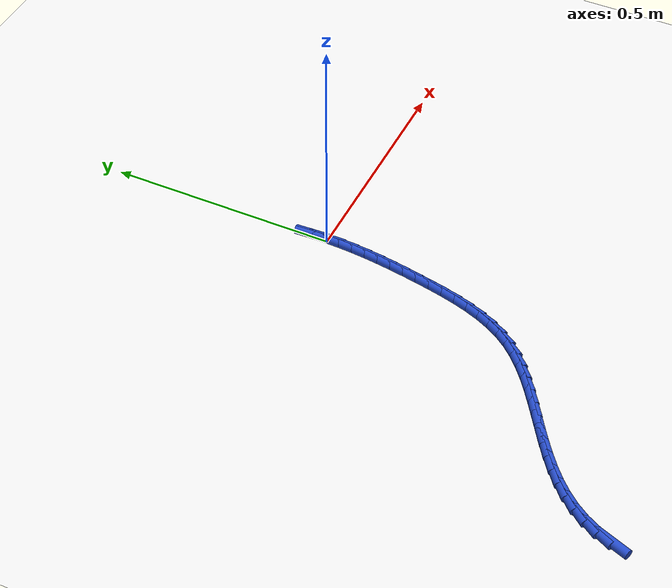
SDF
<sdf version="1.6">
 <world name="default">
  <model name="ground_plane">
   <static>1</static>
   <link name="link">
    <collision name="collision">
     <geometry><plane><normal>0 0 1</normal><size>100 100</size></plane></geometry>
     <surface><friction><ode><mu>100</mu><mu2>50</mu2></ode></friction></surface>
    </collision>
    <visual name="visual">
     <cast_shadows>0</cast_shadows>
     <geometry><plane><normal>0 0 1</normal><size>100 100</size></plane></geometry>
     <material>
      <script><uri>file://media/materials/scripts/gazebo.material</uri><name>Gazebo/WhiteGlow</name></script>
     </material>
    </visual>
   </link>
  </model>
  <model name="line">
   <link name="link_0">
    <pose>-7.806255641895632e-18 4.85722573273506e-17 0.01 0 1.57 -1.5604413219199995</pose>
    <collision name="collision">
     <geometry><cylinder><radius>0.01</radius><length>0.08</length></cylinder></geometry>
    </collision>
    <visual name="visual">
     <material>
      <script><name>Gazebo/Blue</name><uri>file://media/materials/scripts/gazebo.material</uri></script>
     </material>
     <geometry><cylinder><radius>0.01</radius><length>0.08</length></cylinder></geometry>
    </visual>
   </link>
   <link name="link_1">
    <pose>-0.0003257807725844156 0.031460065192326254 0.01 0 1.57 -1.525371229036069</pose>
    <collision name="collision">
     <geometry><cylinder><radius>0.01</radius><length>0.08</length></cylinder></geometry>
    </collision>
    <visual name="visual">
     <material>
      <script><name>Gazebo/Blue</name><uri>file://media/materials/scripts/gazebo.material</uri></script>
     </material>
     <geometry><cylinder><radius>0.01</radius><length>0.08</length></cylinder></geometry>
    </visual>
   </link>
   <link name="link_249">
    <pose>-0.4780613458508661 -0.7970602618831388 0.01 0 1.57 1.2229165995973417</pose>
    <collision name="collision">
     <geometry><cylinder><radius>0.01</radius><length>0.08</length></cylinder></geometry>
    </collision>
    <visual name="visual">
     <material>
      <script><name>Gazebo/Blue</name><uri>file://media/materials/scripts/gazebo.material</uri></script>
     </material>
     <geometry><cylinder><radius>0.01</radius><length>0.08</length></cylinder></geometry>
    </visual>
   </link>
   <link name="link_250">
    <pose>-0.46670847445941227 -0.7657530126044441 0.01 0 1.57 1.0959779014998752</pose>
    <collision name="collision">
     <geometry><cylinder><radius>0.01</radius><length>0.08</length></cylinder></geometry>
    </collision>
    <visual name="visual">
     <material>
      <script><name>Gazebo/Blue</name><uri>file://media/materials/scripts/gazebo.material</uri></script>
     </material>
     <geometry><cylinder><radius>0.01</radius><length>0.08</length></cylinder></geometry>
    </visual>
   </link>
   <link name="link_251">
    <pose>-0.45201307563647836 -0.737165108408421 0.01 0 1.57 0.977134531908725</pose>
    <collision name="collision">
     <geometry><cylinder><radius>0.01</radius><length>0.08</length></cylinder></geometry>
    </collision>
    <visual name="visual">
     <material>
      <script><name>Gazebo/Blue</name><uri>file://media/materials/scripts/gazebo.material</uri></script>
     </material>
     <geometry><cylinder><radius>0.01</radius><length>0.08</length></cylinder></geometry>
    </visual>
   </link>
   <link name="link_252">
    <pose>-0.43435505137940156 -0.711000114657719 0.01 0 1.57 0.8714189642038949</pose>
    <collision name="collision">
     <geometry><cylinder><radius>0.01</radius><length>0.08</length></cylinder></geometry>
    </collision>
    <visual name="visual">
     <material>
      <script><name>Gazebo/Blue</name><uri>file://media/materials/scripts/gazebo.material</uri></script>
     </material>
     <geometry><cylinder><radius>0.01</radius><length>0.08</length></cylinder></geometry>
    </visual>
   </link>
   <link name="link_253">
    <pose>-0.41412450363365 -0.6869511883117023 0.01 0 1.57 0.781517848235146</pose>
    <collision name="collision">
     <geometry><cylinder><radius>0.01</radius><length>0.08</length></cylinder></geometry>
    </collision>
    <visual name="visual">
     <material>
      <script><name>Gazebo/Blue</name><uri>file://media/materials/scripts/gazebo.material</uri></script>
     </material>
     <geometry><cylinder><radius>0.01</radius><length>0.08</length></cylinder></geometry>
    </visual>
   </link>
   <link name="link_254">
    <pose>-0.39171153434468997 -0.6647114863297328 0.01 0 1.57 0.7083864011619792</pose>
    <collision name="collision">
     <geometry><cylinder><radius>0.01</radius><length>0.08</length></cylinder></geometry>
    </collision>
    <visual name="visual">
     <material>
      <script><name>Gazebo/Blue</name><uri>file://media/materials/scripts/gazebo.material</uri></script>
     </material>
     <geometry><cylinder><radius>0.01</radius><length>0.08</length></cylinder></geometry>
    </visual>
   </link>
   <link name="link_255">
    <pose>-0.36750624545798843 -0.6439741656711723 0.01 0 1.57 0.6518496576164503</pose>
    <collision name="collision">
     <geometry><cylinder><radius>0.01</radius><length>0.08</length></cylinder></geometry>
    </collision>
    <visual name="visual">
     <material>
      <script><name>Gazebo/Blue</name><uri>file://media/materials/scripts/gazebo.material</uri></script>
     </material>
     <geometry><cylinder><radius>0.01</radius><length>0.08</length></cylinder></geometry>
    </visual>
   </link>
   <link name="link_256">
    <pose>-0.3418987389190121 -0.6244323832953833 0.01 0 1.57 0.6112136944542926</pose>
    <collision name="collision">
     <geometry><cylinder><radius>0.01</radius><length>0.08</length></cylinder></geometry>
    </collision>
    <visual name="visual">
     <material>
      <script><name>Gazebo/Blue</name><uri>file://media/materials/scripts/gazebo.material</uri></script>
     </material>
     <geometry><cylinder><radius>0.01</radius><length>0.08</length></cylinder></geometry>
    </visual>
   </link>
   <link name="link_257">
    <pose>-0.315279116673228 -0.6057792961617283 0.01 0 1.57 0.5857155691482555</pose>
    <collision name="collision">
     <geometry><cylinder><radius>0.01</radius><length>0.08</length></cylinder></geometry>
    </collision>
    <visual name="visual">
     <material>
      <script><name>Gazebo/Blue</name><uri>file://media/materials/scripts/gazebo.material</uri></script>
     </material>
     <geometry><cylinder><radius>0.01</radius><length>0.08</length></cylinder></geometry>
    </visual>
   </link>
   <link name="link_258">
    <pose>-0.288037480666103 -0.5877080612295698 0.01 0 1.57 0.5747979015315682</pose>
    <collision name="collision">
     <geometry><cylinder><radius>0.01</radius><length>0.08</length></cylinder></geometry>
    </collision>
    <visual name="visual">
     <material>
      <script><name>Gazebo/Blue</name><uri>file://media/materials/scripts/gazebo.material</uri></script>
     </material>
     <geometry><cylinder><radius>0.01</radius><length>0.08</length></cylinder></geometry>
    </visual>
   </link>
   <link name="link_259">
    <pose>-0.26056393284310403 -0.5699118354582701 0.01 0 1.57 0.578253634698167</pose>
    <collision name="collision">
     <geometry><cylinder><radius>0.01</radius><length>0.08</length></cylinder></geometry>
    </collision>
    <visual name="visual">
     <material>
      <script><name>Gazebo/Blue</name><uri>file://media/materials/scripts/gazebo.material</uri></script>
     </material>
     <geometry><cylinder><radius>0.01</radius><length>0.08</length></cylinder></geometry>
    </visual>
   </link>
   <link name="link_260">
    <pose>-0.2332485751496979 -0.5520837758071914 0.01 0 1.57 0.5962853584558275</pose>
    <collision name="collision">
     <geometry><cylinder><radius>0.01</radius><length>0.08</length></cylinder></geometry>
    </collision>
    <visual name="visual">
     <material>
      <script><name>Gazebo/Blue</name><uri>file://media/materials/scripts/gazebo.material</uri></script>
     </material>
     <geometry><cylinder><radius>0.01</radius><length>0.08</length></cylinder></geometry>
    </visual>
   </link>
   <link name="link_261">
    <pose>-0.20648150953135075 -0.5339170392356958 0.01 0 1.57 0.629499092627103</pose>
    <collision name="collision">
     <geometry><cylinder><radius>0.01</radius><length>0.08</length></cylinder></geometry>
    </collision>
    <visual name="visual">
     <material>
      <script><name>Gazebo/Blue</name><uri>file://media/materials/scripts/gazebo.material</uri></script>
     </material>
     <geometry><cylinder><radius>0.01</radius><length>0.08</length></cylinder></geometry>
    </visual>
   </link>
   <link name="link_262">
    <pose>-0.18065283793353107 -0.5151047827031466 0.01 0 1.57 0.6788210831576493</pose>
    <collision name="collision">
     <geometry><cylinder><radius>0.01</radius><length>0.08</length></cylinder></geometry>
    </collision>
    <visual name="visual">
     <material>
      <script><name>Gazebo/Blue</name><uri>file://media/materials/scripts/gazebo.material</uri></script>
     </material>
     <geometry><cylinder><radius>0.01</radius><length>0.08</length></cylinder></geometry>
    </visual>
   </link>
   <link name="link_263">
    <pose>-0.15615266230170502 -0.4953401631689057 0.01 0 1.57 0.7452933014165479</pose>
    <collision name="collision">
     <geometry><cylinder><radius>0.01</radius><length>0.08</length></cylinder></geometry>
    </collision>
    <visual name="visual">
     <material>
      <script><name>Gazebo/Blue</name><uri>file://media/materials/scripts/gazebo.material</uri></script>
     </material>
     <geometry><cylinder><radius>0.01</radius><length>0.08</length></cylinder></geometry>
    </visual>
   </link>
   <link name="link_264">
    <pose>-0.13337108458133942 -0.47431633759233555 0.01 0 1.57 0.8296797574565116</pose>
    <collision name="collision">
     <geometry><cylinder><radius>0.01</radius><length>0.08</length></cylinder></geometry>
    </collision>
    <visual name="visual">
     <material>
      <script><name>Gazebo/Blue</name><uri>file://media/materials/scripts/gazebo.material</uri></script>
     </material>
     <geometry><cylinder><radius>0.01</radius><length>0.08</length></cylinder></geometry>
    </visual>
   </link>
   <link name="link_265">
    <pose>-0.11269820671790112 -0.45172646293279844 0.01 0 1.57 0.9317422423619229</pose>
    <collision name="collision">
     <geometry><cylinder><radius>0.01</radius><length>0.08</length></cylinder></geometry>
    </collision>
    <visual name="visual">
     <material>
      <script><name>Gazebo/Blue</name><uri>file://media/materials/scripts/gazebo.material</uri></script>
     </material>
     <geometry><cylinder><radius>0.01</radius><length>0.08</length></cylinder></geometry>
    </visual>
   </link>
   <link name="link_266">
    <pose>-0.09452197033573323 -0.42726561210231595 0.01 0 1.57 1.0397601086058614</pose>
    <collision name="collision">
     <geometry><cylinder><radius>0.01</radius><length>0.08</length></cylinder></geometry>
    </collision>
    <visual name="visual">
     <material>
      <script><name>Gazebo/Blue</name><uri>file://media/materials/scripts/gazebo.material</uri></script>
     </material>
     <geometry><cylinder><radius>0.01</radius><length>0.08</length></cylinder></geometry>
    </visual>
   </link>
   <link name="link_267">
    <pose>-0.07899862567627063 -0.4008343412238401 0.01 0 1.57 1.1333381680970924</pose>
    <collision name="collision">
     <geometry><cylinder><radius>0.01</radius><length>0.08</length></cylinder></geometry>
    </collision>
    <visual name="visual">
     <material>
      <script><name>Gazebo/Blue</name><uri>file://media/materials/scripts/gazebo.material</uri></script>
     </material>
     <geometry><cylinder><radius>0.01</radius><length>0.08</length></cylinder></geometry>
    </visual>
   </link>
   <link name="link_268">
    <pose>-0.06584959787966006 -0.37271884552733014 0.01 0 1.57 1.2105523443153938</pose>
    <collision name="collision">
     <geometry><cylinder><radius>0.01</radius><length>0.08</length></cylinder></geometry>
    </collision>
    <visual name="visual">
     <material>
      <script><name>Gazebo/Blue</name><uri>file://media/materials/scripts/gazebo.material</uri></script>
     </material>
     <geometry><cylinder><radius>0.01</radius><length>0.08</length></cylinder></geometry>
    </visual>
   </link>
   <link name="link_269">
    <pose>-0.0547484053744771 -0.3432478079036808 0.01 0 1.57 1.2724210897250052</pose>
    <collision name="collision">
     <geometry><cylinder><radius>0.01</radius><length>0.08</length></cylinder></geometry>
    </collision>
    <visual name="visual">
     <material>
      <script><name>Gazebo/Blue</name><uri>file://media/materials/scripts/gazebo.material</uri></script>
     </material>
     <geometry><cylinder><radius>0.01</radius><length>0.08</length></cylinder></geometry>
    </visual>
   </link>
   <link name="link_270">
    <pose>-0.0453685665892971 -0.31274991124378676 0.01 0 1.57 1.3202155689346189</pose>
    <collision name="collision">
     <geometry><cylinder><radius>0.01</radius><length>0.08</length></cylinder></geometry>
    </collision>
    <visual name="visual">
     <material>
      <script><name>Gazebo/Blue</name><uri>file://media/materials/scripts/gazebo.material</uri></script>
     </material>
     <geometry><cylinder><radius>0.01</radius><length>0.08</length></cylinder></geometry>
    </visual>
   </link>
   <link name="link_271">
    <pose>-0.037383599952696224 -0.28155383843854437 0.01 0 1.57 1.3550876903898383</pose>
    <collision name="collision">
     <geometry><cylinder><radius>0.01</radius><length>0.08</length></cylinder></geometry>
    </collision>
    <visual name="visual">
     <material>
      <script><name>Gazebo/Blue</name><uri>file://media/materials/scripts/gazebo.material</uri></script>
     </material>
     <geometry><cylinder><radius>0.01</radius><length>0.08</length></cylinder></geometry>
    </visual>
   </link>
   <link name="link_272">
    <pose>-0.03046702389324975 -0.2499882723788481 0.01 0 1.57 1.3778706149286548</pose>
    <collision name="collision">
     <geometry><cylinder><radius>0.01</radius><length>0.08</length></cylinder></geometry>
    </collision>
    <visual name="visual">
     <material>
      <script><name>Gazebo/Blue</name><uri>file://media/materials/scripts/gazebo.material</uri></script>
     </material>
     <geometry><cylinder><radius>0.01</radius><length>0.08</length></cylinder></geometry>
    </visual>
   </link>
   <link name="link_273">
    <pose>-0.02429251633132036 -0.2183817487921672 0.01 0 1.57 1.3926103821695528</pose>
    <collision name="collision">
     <geometry><cylinder><radius>0.01</radius><length>0.08</length></cylinder></geometry>
    </collision>
    <visual name="visual">
     <material>
      <script><name>Gazebo/Blue</name><uri>file://media/materials/scripts/gazebo.material</uri></script>
     </material>
     <geometry><cylinder><radius>0.01</radius><length>0.08</length></cylinder></geometry>
    </visual>
   </link>
   <link name="link_274">
    <pose>-0.018635235398596448 -0.1869691673899776 0.01 0 1.57 1.4092861128976635</pose>
    <collision name="collision">
     <geometry><cylinder><radius>0.01</radius><length>0.08</length></cylinder></geometry>
    </collision>
    <visual name="visual">
     <material>
      <script><name>Gazebo/Blue</name><uri>file://media/materials/scripts/gazebo.material</uri></script>
     </material>
     <geometry><cylinder><radius>0.01</radius><length>0.08</length></cylinder></geometry>
    </visual>
   </link>
   <link name="link_275">
    <pose>-0.013545680304886825 -0.1557313700604826 0.01 0 1.57 1.4295708121698865</pose>
    <collision name="collision">
     <geometry><cylinder><radius>0.01</radius><length>0.08</length></cylinder></geometry>
    </collision>
    <visual name="visual">
     <material>
      <script><name>Gazebo/Blue</name><uri>file://media/materials/scripts/gazebo.material</uri></script>
     </material>
     <geometry><cylinder><radius>0.01</radius><length>0.08</length></cylinder></geometry>
    </visual>
   </link>
   <link name="link_276">
    <pose>-0.00912059983814712 -0.12460652410358439 0.01 0 1.57 1.4534297028617338</pose>
    <collision name="collision">
     <geometry><cylinder><radius>0.01</radius><length>0.08</length></cylinder></geometry>
    </collision>
    <visual name="visual">
     <material>
      <script><name>Gazebo/Blue</name><uri>file://media/materials/scripts/gazebo.material</uri></script>
     </material>
     <geometry><cylinder><radius>0.01</radius><length>0.08</length></cylinder></geometry>
    </visual>
   </link>
   <link name="link_277">
    <pose>-0.005456742786332958 -0.09353279681918499 0.01 0 1.57 1.4807737642352559</pose>
    <collision name="collision">
     <geometry><cylinder><radius>0.01</radius><length>0.08</length></cylinder></geometry>
    </collision>
    <visual name="visual">
     <material>
      <script><name>Gazebo/Blue</name><uri>file://media/materials/scripts/gazebo.material</uri></script>
     </material>
     <geometry><cylinder><radius>0.01</radius><length>0.08</length></cylinder></geometry>
    </visual>
   </link>
   <link name="link_278">
    <pose>-0.0026508579373999658 -0.062448355507186505 0.01 0 1.57 1.5114520078136418</pose>
    <collision name="collision">
     <geometry><cylinder><radius>0.01</radius><length>0.08</length></cylinder></geometry>
    </collision>
    <visual name="visual">
     <material>
      <script><name>Gazebo/Blue</name><uri>file://media/materials/scripts/gazebo.material</uri></script>
     </material>
     <geometry><cylinder><radius>0.01</radius><length>0.08</length></cylinder></geometry>
    </visual>
   </link>
   <link name="link_279">
    <pose>-0.0007996940793037295 -0.031291367467490054 0.01 0 1.57 1.5452455084321555</pose>
    <collision name="collision">
     <geometry><cylinder><radius>0.01</radius><length>0.08</length></cylinder></geometry>
    </collision>
    <visual name="visual">
     <material>
      <script><name>Gazebo/Blue</name><uri>file://media/materials/scripts/gazebo.material</uri></script>
     </material>
     <geometry><cylinder><radius>0.01</radius><length>0.08</length></cylinder></geometry>
    </visual>
   </link>
   <link name="link_280">
    <pose>4.336808689942018e-18 3.122502256758253e-16 0.01 0 1.57 -1.5597281449959182</pose>
    <collision name="collision">
     <geometry><cylinder><radius>0.01</radius><length>0.08</length></cylinder></geometry>
    </collision>
    <visual name="visual">
     <material>
      <script><name>Gazebo/Blue</name><uri>file://media/materials/scripts/gazebo.material</uri></script>
     </material>
     <geometry><cylinder><radius>0.01</radius><length>0.08</length></cylinder></geometry>
    </visual>
   </link>
   <link name="link_281">
    <pose>-0.00034852448744432125 0.03148757959538348 0.01 0 1.57 -1.5206427837815661</pose>
    <collision name="collision">
     <geometry><cylinder><radius>0.01</radius><length>0.08</length></cylinder></geometry>
    </collision>
    <visual name="visual">
     <material>
      <script><name>Gazebo/Blue</name><uri>file://media/materials/scripts/gazebo.material</uri></script>
     </material>
     <geometry><cylinder><radius>0.01</radius><length>0.08</length></cylinder></geometry>
    </visual>
   </link>
  </model>
 </world>
</sdf>
